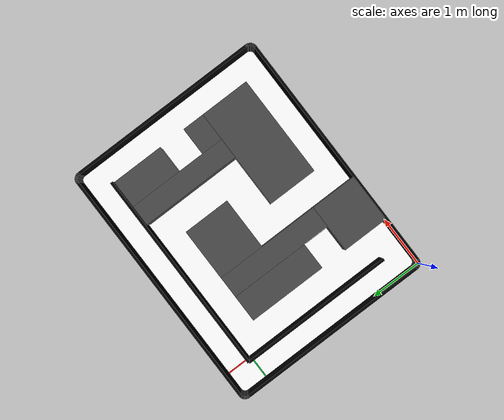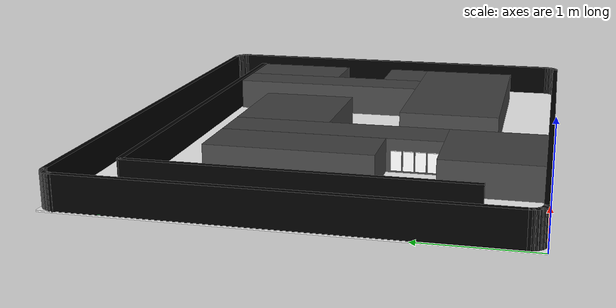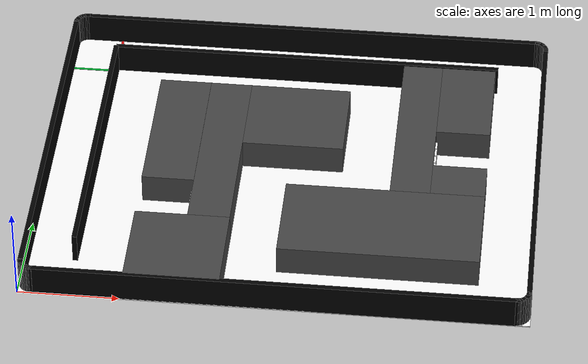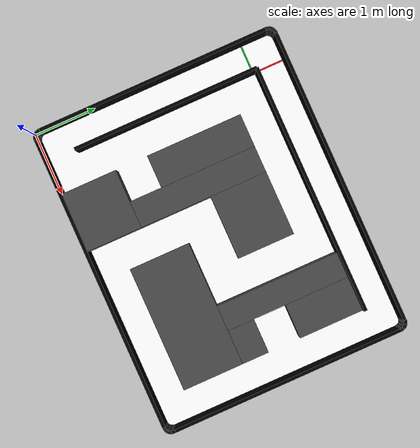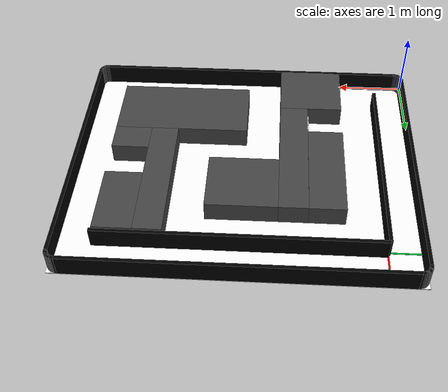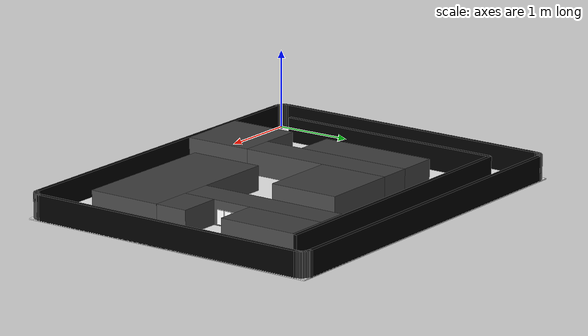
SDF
<?xml version="1.0"?>
<sdf version="1.6">
  <world name="raicom_intelligent_recon">
    <plugin filename="ignition-gazebo-physics-system"
            name="ignition::gazebo::systems::Physics"/>
    <plugin filename="ignition-gazebo-user-commands-system"
            name="ignition::gazebo::systems::UserCommands"/>
    <plugin filename="ignition-gazebo-sensors-system"
            name="ignition::gazebo::systems::Sensors">
      <render_engine>ogre2</render_engine>
    </plugin>
    <plugin filename="ignition-gazebo-scene-broadcaster-system"
            name="ignition::gazebo::systems::SceneBroadcaster"/>

    <gravity>0 0 -9.8</gravity>
    <magnetic_field>6e-06 2.3e-05 -4.2e-05</magnetic_field>
    <atmosphere type="adiabatic"/>

    <physics name="default_physics" default="0" type="ode">
      <max_step_size>0.002</max_step_size>
      <real_time_factor>1.0</real_time_factor>
      <real_time_update_rate>500</real_time_update_rate>
    </physics>

    <scene>
      <ambient>0.65 0.65 0.65 1</ambient>
      <background>0.78 0.82 0.86 1</background>
      <shadows>false</shadows>
    </scene>

    <light name="sun" type="directional">
      <cast_shadows>false</cast_shadows>
      <pose>0 0 8 0 0 0</pose>
      <diffuse>0.9 0.9 0.9 1</diffuse>
      <specular>0.2 0.2 0.2 1</specular>
      <attenuation>
        <range>1000</range>
        <constant>0.9</constant>
        <linear>0.01</linear>
        <quadratic>0.001</quadratic>
      </attenuation>
      <direction>-0.5 0.2 -1</direction>
    </light>

    <include>
      <uri>model://raicom_recon_arena</uri>
      <pose>0 0 0 0 0 0</pose>
    </include>

    <gui fullscreen="0">
      <camera name="overview_camera">
        <pose>2.50 2.00 7.0 0 1.5708 1.5708</pose>
        <view_controller>orbit</view_controller>
        <projection_type>perspective</projection_type>
      </camera>
    </gui>
  </world>
</sdf>

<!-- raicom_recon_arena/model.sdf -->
<sdf version="1.6">
  <model name="raicom_recon_arena">
    <static>true</static>
    <link name="arena">
      <pose>0 0 0 0 0 0</pose>
      <visual name="floor_visual">
        <pose>2.500 2.000 0.000 0 0 0</pose>
        <geometry>
          <box>
            <size>5.000 4.000 0.01</size>
          </box>
        </geometry>
        <material>
          <ambient>1 1 1 1</ambient>
          <diffuse>1 1 1 1</diffuse>
          <specular>0.05 0.05 0.05 1</specular>
        </material>
      </visual>
      <visual name="floor_cover_visual">
        <pose>2.500 2.000 0.008 0 0 0</pose>
        <geometry>
          <box>
            <size>5.000 4.000 0.002</size>
          </box>
        </geometry>
        <material>
          <ambient>1 1 1 1</ambient>
          <diffuse>1 1 1 1</diffuse>
          <specular>0.05 0.05 0.05 1</specular>
        </material>
      </visual>
      <collision name="floor_collision">
        <pose>2.500 2.000 -0.005 0 0 0</pose>
        <geometry>
          <box>
            <size>5.000 4.000 0.01</size>
          </box>
        </geometry>
      </collision>
      <visual name="gray_wall_1_1_visual">
        <pose>1.513 0.488 0.160 0 0 0.000000</pose>
        <geometry>
          <box>
            <size>0.945 0.900 0.320</size>
          </box>
        </geometry>
        <material>
          <ambient>0.27 0.27 0.27 1</ambient>
          <diffuse>0.27 0.27 0.27 1</diffuse>
        </material>
      </visual>
      <collision name="gray_wall_1_1_collision">
        <pose>1.513 0.488 0.160 0 0 0.000000</pose>
        <geometry>
          <box>
            <size>0.945 0.900 0.320</size>
          </box>
        </geometry>
      </collision>
      <visual name="gray_wall_1_2_visual">
        <pose>1.775 1.962 0.160 0 0 0.000000</pose>
        <geometry>
          <box>
            <size>0.421 2.048 0.320</size>
          </box>
        </geometry>
        <material>
          <ambient>0.27 0.27 0.27 1</ambient>
          <diffuse>0.27 0.27 0.27 1</diffuse>
        </material>
      </visual>
      <collision name="gray_wall_1_2_collision">
        <pose>1.775 1.962 0.160 0 0 0.000000</pose>
        <geometry>
          <box>
            <size>0.421 2.048 0.320</size>
          </box>
        </geometry>
      </collision>
      <visual name="gray_wall_1_3_visual">
        <pose>1.302 2.221 0.160 0 0 0.000000</pose>
        <geometry>
          <box>
            <size>0.524 1.531 0.320</size>
          </box>
        </geometry>
        <material>
          <ambient>0.27 0.27 0.27 1</ambient>
          <diffuse>0.27 0.27 0.27 1</diffuse>
        </material>
      </visual>
      <collision name="gray_wall_1_3_collision">
        <pose>1.302 2.221 0.160 0 0 0.000000</pose>
        <geometry>
          <box>
            <size>0.524 1.531 0.320</size>
          </box>
        </geometry>
      </collision>
      <visual name="gray_wall_1_4_visual">
        <pose>2.496 2.530 0.160 0 0 0.000000</pose>
        <geometry>
          <box>
            <size>1.021 0.913 0.320</size>
          </box>
        </geometry>
        <material>
          <ambient>0.27 0.27 0.27 1</ambient>
          <diffuse>0.27 0.27 0.27 1</diffuse>
        </material>
      </visual>
      <collision name="gray_wall_1_4_collision">
        <pose>2.496 2.530 0.160 0 0 0.000000</pose>
        <geometry>
          <box>
            <size>1.021 0.913 0.320</size>
          </box>
        </geometry>
      </collision>
      <visual name="gray_wall_2_1_visual">
        <pose>3.480 1.008 0.160 0 0 0.000000</pose>
        <geometry>
          <box>
            <size>1.985 0.964 0.320</size>
          </box>
        </geometry>
        <material>
          <ambient>0.27 0.27 0.27 1</ambient>
          <diffuse>0.27 0.27 0.27 1</diffuse>
        </material>
      </visual>
      <collision name="gray_wall_2_1_collision">
        <pose>3.480 1.008 0.160 0 0 0.000000</pose>
        <geometry>
          <box>
            <size>1.985 0.964 0.320</size>
          </box>
        </geometry>
      </collision>
      <visual name="gray_wall_2_2_visual">
        <pose>3.725 2.472 0.160 0 0 0.000000</pose>
        <geometry>
          <box>
            <size>0.402 1.965 0.320</size>
          </box>
        </geometry>
        <material>
          <ambient>0.27 0.27 0.27 1</ambient>
          <diffuse>0.27 0.27 0.27 1</diffuse>
        </material>
      </visual>
      <collision name="gray_wall_2_2_collision">
        <pose>3.725 2.472 0.160 0 0 0.000000</pose>
        <geometry>
          <box>
            <size>0.402 1.965 0.320</size>
          </box>
        </geometry>
      </collision>
      <visual name="gray_wall_2_3_visual">
        <pose>4.199 1.702 0.160 0 0 0.000000</pose>
        <geometry>
          <box>
            <size>0.546 0.424 0.320</size>
          </box>
        </geometry>
        <material>
          <ambient>0.27 0.27 0.27 1</ambient>
          <diffuse>0.27 0.27 0.27 1</diffuse>
        </material>
      </visual>
      <collision name="gray_wall_2_3_collision">
        <pose>4.199 1.702 0.160 0 0 0.000000</pose>
        <geometry>
          <box>
            <size>0.546 0.424 0.320</size>
          </box>
        </geometry>
      </collision>
      <visual name="gray_wall_2_4_visual">
        <pose>4.199 2.944 0.160 0 0 0.000000</pose>
        <geometry>
          <box>
            <size>0.546 1.021 0.320</size>
          </box>
        </geometry>
        <material>
          <ambient>0.27 0.27 0.27 1</ambient>
          <diffuse>0.27 0.27 0.27 1</diffuse>
        </material>
      </visual>
      <collision name="gray_wall_2_4_collision">
        <pose>4.199 2.944 0.160 0 0 0.000000</pose>
        <geometry>
          <box>
            <size>0.546 1.021 0.320</size>
          </box>
        </geometry>
      </collision>
      <visual name="outer_top_visual">
        <pose>2.500 3.975 0.160 0 0 0.000000</pose>
        <geometry>
          <box>
            <size>4.720 0.050 0.320</size>
          </box>
        </geometry>
        <material>
          <ambient>0 0 0 1</ambient>
          <diffuse>0 0 0 1</diffuse>
        </material>
      </visual>
      <collision name="outer_top_collision">
        <pose>2.500 3.975 0.160 0 0 0.000000</pose>
        <geometry>
          <box>
            <size>4.720 0.050 0.320</size>
          </box>
        </geometry>
      </collision>
      <visual name="outer_bottom_visual">
        <pose>2.500 0.025 0.160 0 0 0.000000</pose>
        <geometry>
          <box>
            <size>4.720 0.050 0.320</size>
          </box>
        </geometry>
        <material>
          <ambient>0 0 0 1</ambient>
          <diffuse>0 0 0 1</diffuse>
        </material>
      </visual>
      <collision name="outer_bottom_collision">
        <pose>2.500 0.025 0.160 0 0 0.000000</pose>
        <geometry>
          <box>
            <size>4.720 0.050 0.320</size>
          </box>
        </geometry>
      </collision>
      <visual name="outer_left_visual">
        <pose>0.025 2.000 0.160 0 0 0.000000</pose>
        <geometry>
          <box>
            <size>0.050 3.720 0.320</size>
          </box>
        </geometry>
        <material>
          <ambient>0 0 0 1</ambient>
          <diffuse>0 0 0 1</diffuse>
        </material>
      </visual>
      <collision name="outer_left_collision">
        <pose>0.025 2.000 0.160 0 0 0.000000</pose>
        <geometry>
          <box>
            <size>0.050 3.720 0.320</size>
          </box>
        </geometry>
      </collision>
      <visual name="outer_right_visual">
        <pose>4.975 2.000 0.160 0 0 0.000000</pose>
        <geometry>
          <box>
            <size>0.050 3.720 0.320</size>
          </box>
        </geometry>
        <material>
          <ambient>0 0 0 1</ambient>
          <diffuse>0 0 0 1</diffuse>
        </material>
      </visual>
      <collision name="outer_right_collision">
        <pose>4.975 2.000 0.160 0 0 0.000000</pose>
        <geometry>
          <box>
            <size>0.050 3.720 0.320</size>
          </box>
        </geometry>
      </collision>
      <visual name="outer_tl_0_visual">
        <pose>0.129 3.974 0.160 0 0 3.239767</pose>
        <geometry>
          <box>
            <size>0.050 0.050 0.320</size>
          </box>
        </geometry>
        <material>
          <ambient>0 0 0 1</ambient>
          <diffuse>0 0 0 1</diffuse>
        </material>
      </visual>
      <collision name="outer_tl_0_collision">
        <pose>0.129 3.974 0.160 0 0 3.239767</pose>
        <geometry>
          <box>
            <size>0.050 0.050 0.320</size>
          </box>
        </geometry>
      </collision>
      <visual name="outer_tl_1_visual">
        <pose>0.107 3.970 0.160 0 0 3.436117</pose>
        <geometry>
          <box>
            <size>0.050 0.050 0.320</size>
          </box>
        </geometry>
        <material>
          <ambient>0 0 0 1</ambient>
          <diffuse>0 0 0 1</diffuse>
        </material>
      </visual>
      <collision name="outer_tl_1_collision">
        <pose>0.107 3.970 0.160 0 0 3.436117</pose>
        <geometry>
          <box>
            <size>0.050 0.050 0.320</size>
          </box>
        </geometry>
      </collision>
      <visual name="outer_tl_2_visual">
        <pose>0.086 3.961 0.160 0 0 3.632467</pose>
        <geometry>
          <box>
            <size>0.050 0.050 0.320</size>
          </box>
        </geometry>
        <material>
          <ambient>0 0 0 1</ambient>
          <diffuse>0 0 0 1</diffuse>
        </material>
      </visual>
      <collision name="outer_tl_2_collision">
        <pose>0.086 3.961 0.160 0 0 3.632467</pose>
        <geometry>
          <box>
            <size>0.050 0.050 0.320</size>
          </box>
        </geometry>
      </collision>
      <visual name="outer_tl_3_visual">
        <pose>0.067 3.949 0.160 0 0 3.828816</pose>
        <geometry>
          <box>
            <size>0.050 0.050 0.320</size>
          </box>
        </geometry>
        <material>
          <ambient>0 0 0 1</ambient>
          <diffuse>0 0 0 1</diffuse>
        </material>
      </visual>
      <collision name="outer_tl_3_collision">
        <pose>0.067 3.949 0.160 0 0 3.828816</pose>
        <geometry>
          <box>
            <size>0.050 0.050 0.320</size>
          </box>
        </geometry>
      </collision>
      <visual name="outer_tl_4_visual">
        <pose>0.051 3.933 0.160 0 0 4.025166</pose>
        <geometry>
          <box>
            <size>0.050 0.050 0.320</size>
          </box>
        </geometry>
        <material>
          <ambient>0 0 0 1</ambient>
          <diffuse>0 0 0 1</diffuse>
        </material>
      </visual>
      <collision name="outer_tl_4_collision">
        <pose>0.051 3.933 0.160 0 0 4.025166</pose>
        <geometry>
          <box>
            <size>0.050 0.050 0.320</size>
          </box>
        </geometry>
      </collision>
      <visual name="outer_tl_5_visual">
        <pose>0.039 3.914 0.160 0 0 4.221515</pose>
        <geometry>
          <box>
            <size>0.050 0.050 0.320</size>
          </box>
        </geometry>
        <material>
          <ambient>0 0 0 1</ambient>
          <diffuse>0 0 0 1</diffuse>
        </material>
      </visual>
      <collision name="outer_tl_5_collision">
        <pose>0.039 3.914 0.160 0 0 4.221515</pose>
        <geometry>
          <box>
            <size>0.050 0.050 0.320</size>
          </box>
        </geometry>
      </collision>
      <visual name="outer_tl_6_visual">
        <pose>0.030 3.893 0.160 0 0 4.417865</pose>
        <geometry>
          <box>
            <size>0.050 0.050 0.320</size>
          </box>
        </geometry>
        <material>
          <ambient>0 0 0 1</ambient>
          <diffuse>0 0 0 1</diffuse>
        </material>
      </visual>
      <collision name="outer_tl_6_collision">
        <pose>0.030 3.893 0.160 0 0 4.417865</pose>
        <geometry>
          <box>
            <size>0.050 0.050 0.320</size>
          </box>
        </geometry>
      </collision>
      <visual name="outer_tl_7_visual">
        <pose>0.026 3.871 0.160 0 0 4.614214</pose>
        <geometry>
          <box>
            <size>0.050 0.050 0.320</size>
          </box>
        </geometry>
        <material>
          <ambient>0 0 0 1</ambient>
          <diffuse>0 0 0 1</diffuse>
        </material>
      </visual>
      <collision name="outer_tl_7_collision">
        <pose>0.026 3.871 0.160 0 0 4.614214</pose>
        <geometry>
          <box>
            <size>0.050 0.050 0.320</size>
          </box>
        </geometry>
      </collision>
      <visual name="outer_tr_0_visual">
        <pose>4.974 3.871 0.160 0 0 1.668971</pose>
        <geometry>
          <box>
            <size>0.050 0.050 0.320</size>
          </box>
        </geometry>
        <material>
          <ambient>0 0 0 1</ambient>
          <diffuse>0 0 0 1</diffuse>
        </material>
      </visual>
      <collision name="outer_tr_0_collision">
        <pose>4.974 3.871 0.160 0 0 1.668971</pose>
        <geometry>
          <box>
            <size>0.050 0.050 0.320</size>
          </box>
        </geometry>
      </collision>
      <visual name="outer_tr_1_visual">
        <pose>4.970 3.893 0.160 0 0 1.865321</pose>
        <geometry>
          <box>
            <size>0.050 0.050 0.320</size>
          </box>
        </geometry>
        <material>
          <ambient>0 0 0 1</ambient>
          <diffuse>0 0 0 1</diffuse>
        </material>
      </visual>
      <collision name="outer_tr_1_collision">
        <pose>4.970 3.893 0.160 0 0 1.865321</pose>
        <geometry>
          <box>
            <size>0.050 0.050 0.320</size>
          </box>
        </geometry>
      </collision>
      <visual name="outer_tr_2_visual">
        <pose>4.961 3.914 0.160 0 0 2.061670</pose>
        <geometry>
          <box>
            <size>0.050 0.050 0.320</size>
          </box>
        </geometry>
        <material>
          <ambient>0 0 0 1</ambient>
          <diffuse>0 0 0 1</diffuse>
        </material>
      </visual>
      <collision name="outer_tr_2_collision">
        <pose>4.961 3.914 0.160 0 0 2.061670</pose>
        <geometry>
          <box>
            <size>0.050 0.050 0.320</size>
          </box>
        </geometry>
      </collision>
      <visual name="outer_tr_3_visual">
        <pose>4.949 3.933 0.160 0 0 2.258020</pose>
        <geometry>
          <box>
            <size>0.050 0.050 0.320</size>
          </box>
        </geometry>
        <material>
          <ambient>0 0 0 1</ambient>
          <diffuse>0 0 0 1</diffuse>
        </material>
      </visual>
      <collision name="outer_tr_3_collision">
        <pose>4.949 3.933 0.160 0 0 2.258020</pose>
        <geometry>
          <box>
            <size>0.050 0.050 0.320</size>
          </box>
        </geometry>
      </collision>
      <visual name="outer_tr_4_visual">
        <pose>4.933 3.949 0.160 0 0 2.454369</pose>
        <geometry>
          <box>
            <size>0.050 0.050 0.320</size>
          </box>
        </geometry>
        <material>
          <ambient>0 0 0 1</ambient>
          <diffuse>0 0 0 1</diffuse>
        </material>
      </visual>
      <collision name="outer_tr_4_collision">
        <pose>4.933 3.949 0.160 0 0 2.454369</pose>
        <geometry>
          <box>
            <size>0.050 0.050 0.320</size>
          </box>
        </geometry>
      </collision>
      <visual name="outer_tr_5_visual">
        <pose>4.914 3.961 0.160 0 0 2.650719</pose>
        <geometry>
          <box>
            <size>0.050 0.050 0.320</size>
          </box>
        </geometry>
        <material>
          <ambient>0 0 0 1</ambient>
          <diffuse>0 0 0 1</diffuse>
        </material>
      </visual>
      <collision name="outer_tr_5_collision">
        <pose>4.914 3.961 0.160 0 0 2.650719</pose>
        <geometry>
          <box>
            <size>0.050 0.050 0.320</size>
          </box>
        </geometry>
      </collision>
      <visual name="outer_tr_6_visual">
        <pose>4.893 3.970 0.160 0 0 2.847068</pose>
        <geometry>
          <box>
            <size>0.050 0.050 0.320</size>
          </box>
        </geometry>
        <material>
          <ambient>0 0 0 1</ambient>
          <diffuse>0 0 0 1</diffuse>
        </material>
      </visual>
      <collision name="outer_tr_6_collision">
        <pose>4.893 3.970 0.160 0 0 2.847068</pose>
        <geometry>
          <box>
            <size>0.050 0.050 0.320</size>
          </box>
        </geometry>
      </collision>
      <visual name="outer_tr_7_visual">
        <pose>4.871 3.974 0.160 0 0 3.043418</pose>
        <geometry>
          <box>
            <size>0.050 0.050 0.320</size>
          </box>
        </geometry>
        <material>
          <ambient>0 0 0 1</ambient>
          <diffuse>0 0 0 1</diffuse>
        </material>
      </visual>
      <collision name="outer_tr_7_collision">
        <pose>4.871 3.974 0.160 0 0 3.043418</pose>
        <geometry>
          <box>
            <size>0.050 0.050 0.320</size>
          </box>
        </geometry>
      </collision>
      <visual name="outer_br_0_visual">
        <pose>4.871 0.026 0.160 0 0 6.381360</pose>
        <geometry>
          <box>
            <size>0.050 0.050 0.320</size>
          </box>
        </geometry>
        <material>
          <ambient>0 0 0 1</ambient>
          <diffuse>0 0 0 1</diffuse>
        </material>
      </visual>
      <collision name="outer_br_0_collision">
        <pose>4.871 0.026 0.160 0 0 6.381360</pose>
        <geometry>
          <box>
            <size>0.050 0.050 0.320</size>
          </box>
        </geometry>
      </collision>
      <visual name="outer_br_1_visual">
        <pose>4.893 0.030 0.160 0 0 6.577710</pose>
        <geometry>
          <box>
            <size>0.050 0.050 0.320</size>
          </box>
        </geometry>
        <material>
          <ambient>0 0 0 1</ambient>
          <diffuse>0 0 0 1</diffuse>
        </material>
      </visual>
      <collision name="outer_br_1_collision">
        <pose>4.893 0.030 0.160 0 0 6.577710</pose>
        <geometry>
          <box>
            <size>0.050 0.050 0.320</size>
          </box>
        </geometry>
      </collision>
      <visual name="outer_br_2_visual">
        <pose>4.914 0.039 0.160 0 0 6.774059</pose>
        <geometry>
          <box>
            <size>0.050 0.050 0.320</size>
          </box>
        </geometry>
        <material>
          <ambient>0 0 0 1</ambient>
          <diffuse>0 0 0 1</diffuse>
        </material>
      </visual>
      <collision name="outer_br_2_collision">
        <pose>4.914 0.039 0.160 0 0 6.774059</pose>
        <geometry>
          <box>
            <size>0.050 0.050 0.320</size>
          </box>
        </geometry>
      </collision>
      <visual name="outer_br_3_visual">
        <pose>4.933 0.051 0.160 0 0 6.970409</pose>
        <geometry>
          <box>
            <size>0.050 0.050 0.320</size>
          </box>
        </geometry>
        <material>
          <ambient>0 0 0 1</ambient>
          <diffuse>0 0 0 1</diffuse>
        </material>
      </visual>
      <collision name="outer_br_3_collision">
        <pose>4.933 0.051 0.160 0 0 6.970409</pose>
        <geometry>
          <box>
            <size>0.050 0.050 0.320</size>
          </box>
        </geometry>
      </collision>
      <visual name="outer_br_4_visual">
        <pose>4.949 0.067 0.160 0 0 7.166758</pose>
        <geometry>
          <box>
            <size>0.050 0.050 0.320</size>
          </box>
        </geometry>
        <material>
          <ambient>0 0 0 1</ambient>
          <diffuse>0 0 0 1</diffuse>
        </material>
      </visual>
      <collision name="outer_br_4_collision">
        <pose>4.949 0.067 0.160 0 0 7.166758</pose>
        <geometry>
          <box>
            <size>0.050 0.050 0.320</size>
          </box>
        </geometry>
      </collision>
      <visual name="outer_br_5_visual">
        <pose>4.961 0.086 0.160 0 0 7.363108</pose>
        <geometry>
          <box>
            <size>0.050 0.050 0.320</size>
          </box>
        </geometry>
        <material>
          <ambient>0 0 0 1</ambient>
          <diffuse>0 0 0 1</diffuse>
        </material>
      </visual>
      <collision name="outer_br_5_collision">
        <pose>4.961 0.086 0.160 0 0 7.363108</pose>
        <geometry>
          <box>
            <size>0.050 0.050 0.320</size>
          </box>
        </geometry>
      </collision>
      <visual name="outer_br_6_visual">
        <pose>4.970 0.107 0.160 0 0 7.559457</pose>
        <geometry>
          <box>
            <size>0.050 0.050 0.320</size>
          </box>
        </geometry>
        <material>
          <ambient>0 0 0 1</ambient>
          <diffuse>0 0 0 1</diffuse>
        </material>
      </visual>
      <collision name="outer_br_6_collision">
        <pose>4.970 0.107 0.160 0 0 7.559457</pose>
        <geometry>
          <box>
            <size>0.050 0.050 0.320</size>
          </box>
        </geometry>
      </collision>
      <visual name="outer_br_7_visual">
        <pose>4.974 0.129 0.160 0 0 7.755807</pose>
        <geometry>
          <box>
            <size>0.050 0.050 0.320</size>
          </box>
        </geometry>
        <material>
          <ambient>0 0 0 1</ambient>
          <diffuse>0 0 0 1</diffuse>
        </material>
      </visual>
      <collision name="outer_br_7_collision">
        <pose>4.974 0.129 0.160 0 0 7.755807</pose>
        <geometry>
          <box>
            <size>0.050 0.050 0.320</size>
          </box>
        </geometry>
      </collision>
      <visual name="outer_bl_0_visual">
        <pose>0.026 0.129 0.160 0 0 4.810564</pose>
        <geometry>
          <box>
            <size>0.050 0.050 0.320</size>
          </box>
        </geometry>
        <material>
          <ambient>0 0 0 1</ambient>
          <diffuse>0 0 0 1</diffuse>
        </material>
      </visual>
      <collision name="outer_bl_0_collision">
        <pose>0.026 0.129 0.160 0 0 4.810564</pose>
        <geometry>
          <box>
            <size>0.050 0.050 0.320</size>
          </box>
        </geometry>
      </collision>
      <visual name="outer_bl_1_visual">
        <pose>0.030 0.107 0.160 0 0 5.006913</pose>
        <geometry>
          <box>
            <size>0.050 0.050 0.320</size>
          </box>
        </geometry>
        <material>
          <ambient>0 0 0 1</ambient>
          <diffuse>0 0 0 1</diffuse>
        </material>
      </visual>
      <collision name="outer_bl_1_collision">
        <pose>0.030 0.107 0.160 0 0 5.006913</pose>
        <geometry>
          <box>
            <size>0.050 0.050 0.320</size>
          </box>
        </geometry>
      </collision>
      <visual name="outer_bl_2_visual">
        <pose>0.039 0.086 0.160 0 0 5.203263</pose>
        <geometry>
          <box>
            <size>0.050 0.050 0.320</size>
          </box>
        </geometry>
        <material>
          <ambient>0 0 0 1</ambient>
          <diffuse>0 0 0 1</diffuse>
        </material>
      </visual>
      <collision name="outer_bl_2_collision">
        <pose>0.039 0.086 0.160 0 0 5.203263</pose>
        <geometry>
          <box>
            <size>0.050 0.050 0.320</size>
          </box>
        </geometry>
      </collision>
      <visual name="outer_bl_3_visual">
        <pose>0.051 0.067 0.160 0 0 5.399612</pose>
        <geometry>
          <box>
            <size>0.050 0.050 0.320</size>
          </box>
        </geometry>
        <material>
          <ambient>0 0 0 1</ambient>
          <diffuse>0 0 0 1</diffuse>
        </material>
      </visual>
      <collision name="outer_bl_3_collision">
        <pose>0.051 0.067 0.160 0 0 5.399612</pose>
        <geometry>
          <box>
            <size>0.050 0.050 0.320</size>
          </box>
        </geometry>
      </collision>
      <visual name="outer_bl_4_visual">
        <pose>0.067 0.051 0.160 0 0 5.595962</pose>
        <geometry>
          <box>
            <size>0.050 0.050 0.320</size>
          </box>
        </geometry>
        <material>
          <ambient>0 0 0 1</ambient>
          <diffuse>0 0 0 1</diffuse>
        </material>
      </visual>
      <collision name="outer_bl_4_collision">
        <pose>0.067 0.051 0.160 0 0 5.595962</pose>
        <geometry>
          <box>
            <size>0.050 0.050 0.320</size>
          </box>
        </geometry>
      </collision>
      <visual name="outer_bl_5_visual">
        <pose>0.086 0.039 0.160 0 0 5.792311</pose>
        <geometry>
          <box>
            <size>0.050 0.050 0.320</size>
          </box>
        </geometry>
        <material>
          <ambient>0 0 0 1</ambient>
          <diffuse>0 0 0 1</diffuse>
        </material>
      </visual>
      <collision name="outer_bl_5_collision">
        <pose>0.086 0.039 0.160 0 0 5.792311</pose>
        <geometry>
          <box>
            <size>0.050 0.050 0.320</size>
          </box>
        </geometry>
      </collision>
      <visual name="outer_bl_6_visual">
        <pose>0.107 0.030 0.160 0 0 5.988661</pose>
        <geometry>
          <box>
            <size>0.050 0.050 0.320</size>
          </box>
        </geometry>
        <material>
          <ambient>0 0 0 1</ambient>
          <diffuse>0 0 0 1</diffuse>
        </material>
      </visual>
      <collision name="outer_bl_6_collision">
        <pose>0.107 0.030 0.160 0 0 5.988661</pose>
        <geometry>
          <box>
            <size>0.050 0.050 0.320</size>
          </box>
        </geometry>
      </collision>
      <visual name="outer_bl_7_visual">
        <pose>0.129 0.026 0.160 0 0 6.185011</pose>
        <geometry>
          <box>
            <size>0.050 0.050 0.320</size>
          </box>
        </geometry>
        <material>
          <ambient>0 0 0 1</ambient>
          <diffuse>0 0 0 1</diffuse>
        </material>
      </visual>
      <collision name="outer_bl_7_collision">
        <pose>0.129 0.026 0.160 0 0 6.185011</pose>
        <geometry>
          <box>
            <size>0.050 0.050 0.320</size>
          </box>
        </geometry>
      </collision>
      <visual name="top_lane_wall_visual">
        <pose>2.500 3.500 0.160 0 0 0.000000</pose>
        <geometry>
          <box>
            <size>4.000 0.050 0.320</size>
          </box>
        </geometry>
        <material>
          <ambient>0 0 0 1</ambient>
          <diffuse>0 0 0 1</diffuse>
        </material>
      </visual>
      <collision name="top_lane_wall_collision">
        <pose>2.500 3.500 0.160 0 0 0.000000</pose>
        <geometry>
          <box>
            <size>4.000 0.050 0.320</size>
          </box>
        </geometry>
      </collision>
      <visual name="left_lane_wall_visual">
        <pose>0.500 2.000 0.160 0 0 0.000000</pose>
        <geometry>
          <box>
            <size>0.050 3.000 0.320</size>
          </box>
        </geometry>
        <material>
          <ambient>0 0 0 1</ambient>
          <diffuse>0 0 0 1</diffuse>
        </material>
      </visual>
      <collision name="left_lane_wall_collision">
        <pose>0.500 2.000 0.160 0 0 0.000000</pose>
        <geometry>
          <box>
            <size>0.050 3.000 0.320</size>
          </box>
        </geometry>
      </collision>
      <visual name="start_line_visual">
        <pose>0.250 3.455 0.012 0 0 0</pose>
        <geometry>
          <box>
            <size>0.500 0.025 0.004</size>
          </box>
        </geometry>
        <material>
          <ambient>0.00 0.70 0.20 1</ambient>
          <diffuse>0.00 0.70 0.20 1</diffuse>
        </material>
      </visual>
      <visual name="finish_line_visual">
        <pose>0.500 3.730 0.012 0 0 0</pose>
        <geometry>
          <box>
            <size>0.025 0.500 0.004</size>
          </box>
        </geometry>
        <material>
          <ambient>0.85 0.05 0.05 1</ambient>
          <diffuse>0.85 0.05 0.05 1</diffuse>
        </material>
      </visual>
      <visual name="zone1_board_1_visual">
        <pose>1.555 1.030 0.120 0 0 0</pose>
        <geometry>
          <box>
            <size>0.020 0.095 0.180</size>
          </box>
        </geometry>
        <material>
          <ambient>1 1 1 1</ambient>
          <diffuse>1 1 1 1</diffuse>
          <pbr>
            <metal>
              <albedo_map>model://raicom_recon_arena/materials/textures/hostage_1.jpg</albedo_map>
              <metalness>0</metalness>
              <roughness>1</roughness>
            </metal>
          </pbr>
        </material>
      </visual>
      <collision name="zone1_board_1_collision">
        <pose>1.555 1.030 0.120 0 0 0</pose>
        <geometry>
          <box>
            <size>0.020 0.095 0.180</size>
          </box>
        </geometry>
      </collision>
      <visual name="zone1_board_2_visual">
        <pose>1.555 1.140 0.120 0 0 0</pose>
        <geometry>
          <box>
            <size>0.020 0.095 0.180</size>
          </box>
        </geometry>
        <material>
          <ambient>1 1 1 1</ambient>
          <diffuse>1 1 1 1</diffuse>
          <pbr>
            <metal>
              <albedo_map>model://raicom_recon_arena/materials/textures/enemy_4.jpg</albedo_map>
              <metalness>0</metalness>
              <roughness>1</roughness>
            </metal>
          </pbr>
        </material>
      </visual>
      <collision name="zone1_board_2_collision">
        <pose>1.555 1.140 0.120 0 0 0</pose>
        <geometry>
          <box>
            <size>0.020 0.095 0.180</size>
          </box>
        </geometry>
      </collision>
      <visual name="zone1_board_3_visual">
        <pose>1.555 1.250 0.120 0 0 0</pose>
        <geometry>
          <box>
            <size>0.020 0.095 0.180</size>
          </box>
        </geometry>
        <material>
          <ambient>1 1 1 1</ambient>
          <diffuse>1 1 1 1</diffuse>
          <pbr>
            <metal>
              <albedo_map>model://raicom_recon_arena/materials/textures/friend_4.jpg</albedo_map>
              <metalness>0</metalness>
              <roughness>1</roughness>
            </metal>
          </pbr>
        </material>
      </visual>
      <collision name="zone1_board_3_collision">
        <pose>1.555 1.250 0.120 0 0 0</pose>
        <geometry>
          <box>
            <size>0.020 0.095 0.180</size>
          </box>
        </geometry>
      </collision>
      <visual name="zone1_board_4_visual">
        <pose>1.555 1.360 0.120 0 0 0</pose>
        <geometry>
          <box>
            <size>0.020 0.095 0.180</size>
          </box>
        </geometry>
        <material>
          <ambient>1 1 1 1</ambient>
          <diffuse>1 1 1 1</diffuse>
          <pbr>
            <metal>
              <albedo_map>model://raicom_recon_arena/materials/textures/hostage_2.jpg</albedo_map>
              <metalness>0</metalness>
              <roughness>1</roughness>
            </metal>
          </pbr>
        </material>
      </visual>
      <collision name="zone1_board_4_collision">
        <pose>1.555 1.360 0.120 0 0 0</pose>
        <geometry>
          <box>
            <size>0.020 0.095 0.180</size>
          </box>
        </geometry>
      </collision>
      <visual name="zone2_board_1_visual">
        <pose>3.936 2.020 0.120 0 0 0</pose>
        <geometry>
          <box>
            <size>0.020 0.095 0.180</size>
          </box>
        </geometry>
        <material>
          <ambient>1 1 1 1</ambient>
          <diffuse>1 1 1 1</diffuse>
          <pbr>
            <metal>
              <albedo_map>model://raicom_recon_arena/materials/textures/hostage_1.jpg</albedo_map>
              <metalness>0</metalness>
              <roughness>1</roughness>
            </metal>
          </pbr>
        </material>
      </visual>
      <collision name="zone2_board_1_collision">
        <pose>3.936 2.020 0.120 0 0 0</pose>
        <geometry>
          <box>
            <size>0.020 0.095 0.180</size>
          </box>
        </geometry>
      </collision>
      <visual name="zone2_board_2_visual">
        <pose>3.936 2.130 0.120 0 0 0</pose>
        <geometry>
          <box>
            <size>0.020 0.095 0.180</size>
          </box>
        </geometry>
        <material>
          <ambient>1 1 1 1</ambient>
          <diffuse>1 1 1 1</diffuse>
          <pbr>
            <metal>
              <albedo_map>model://raicom_recon_arena/materials/textures/friend_5.jpg</albedo_map>
              <metalness>0</metalness>
              <roughness>1</roughness>
            </metal>
          </pbr>
        </material>
      </visual>
      <collision name="zone2_board_2_collision">
        <pose>3.936 2.130 0.120 0 0 0</pose>
        <geometry>
          <box>
            <size>0.020 0.095 0.180</size>
          </box>
        </geometry>
      </collision>
      <visual name="zone2_board_3_visual">
        <pose>3.936 2.240 0.120 0 0 0</pose>
        <geometry>
          <box>
            <size>0.020 0.095 0.180</size>
          </box>
        </geometry>
        <material>
          <ambient>1 1 1 1</ambient>
          <diffuse>1 1 1 1</diffuse>
          <pbr>
            <metal>
              <albedo_map>model://raicom_recon_arena/materials/textures/hostage_3.jpg</albedo_map>
              <metalness>0</metalness>
              <roughness>1</roughness>
            </metal>
          </pbr>
        </material>
      </visual>
      <collision name="zone2_board_3_collision">
        <pose>3.936 2.240 0.120 0 0 0</pose>
        <geometry>
          <box>
            <size>0.020 0.095 0.180</size>
          </box>
        </geometry>
      </collision>
      <visual name="zone2_board_4_visual">
        <pose>3.936 2.350 0.120 0 0 0</pose>
        <geometry>
          <box>
            <size>0.020 0.095 0.180</size>
          </box>
        </geometry>
        <material>
          <ambient>1 1 1 1</ambient>
          <diffuse>1 1 1 1</diffuse>
          <pbr>
            <metal>
              <albedo_map>model://raicom_recon_arena/materials/textures/enemy_2.jpg</albedo_map>
              <metalness>0</metalness>
              <roughness>1</roughness>
            </metal>
          </pbr>
        </material>
      </visual>
      <collision name="zone2_board_4_collision">
        <pose>3.936 2.350 0.120 0 0 0</pose>
        <geometry>
          <box>
            <size>0.020 0.095 0.180</size>
          </box>
        </geometry>
      </collision>
    </link>
  </model>
</sdf>
